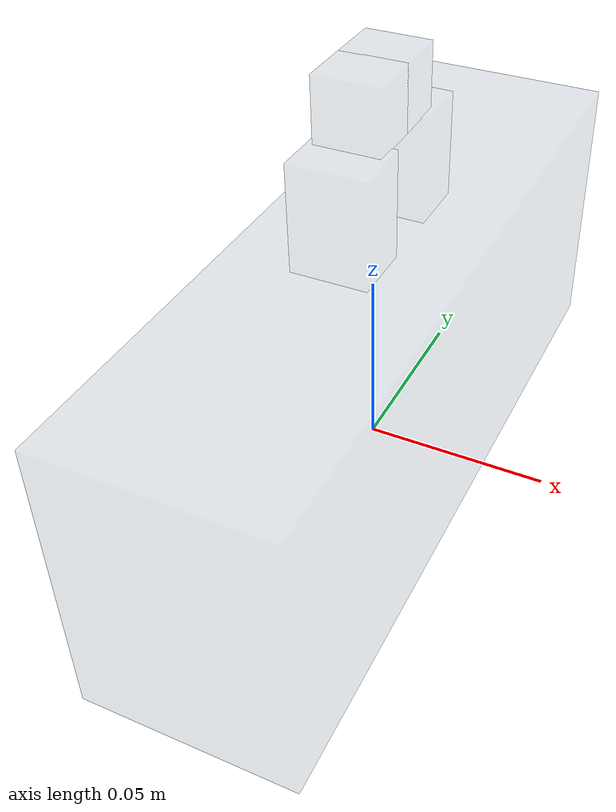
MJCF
<mujoco model="panda hand">
  <compiler angle="radian" meshdir="mjcf/franka_hand/meshes"/>

  <default>
    <default class="panda">
      <material specular="0.5" shininess="0.25"/>
      <joint armature="0.1" damping="1" axis="0 0 1" range="-2.8973 2.8973"/>
      <general dyntype="none" biastype="affine" ctrlrange="-2.8973 2.8973" forcerange="-87 87"/>
      <default class="finger">
        <joint axis="0 1 0" type="slide" range="0 0.04"/>
      </default>

      <default class="visual">
        <geom type="mesh" contype="0" conaffinity="0" group="2"/>
      </default>
      <default class="collision">
        <geom type="mesh" group="3"/>
        <default class="fingertip_pad_collision_1">
          <geom type="box" size="0.0085 0.004 0.0085" pos="0 0.0055 0.0445"/>
        </default>
        <default class="fingertip_pad_collision_2">
          <geom type="box" size="0.003 0.002 0.003" pos="0.0055 0.002 0.05"/>
        </default>
        <default class="fingertip_pad_collision_3">
          <geom type="box" size="0.003 0.002 0.003" pos="-0.0055 0.002 0.05"/>
        </default>
        <default class="fingertip_pad_collision_4">
          <geom type="box" size="0.003 0.002 0.0035" pos="0.0055 0.002 0.0395"/>
        </default>
        <default class="fingertip_pad_collision_5">
          <geom type="box" size="0.003 0.002 0.0035" pos="-0.0055 0.002 0.0395"/>
        </default>
      </default>
    </default>
  </default>

  <asset>
    <material class="panda" name="white" rgba="1 1 1 1"/>
    <material class="panda" name="off_white" rgba="0.901961 0.921569 0.929412 1"/>
    <material class="panda" name="black" rgba="0.25 0.25 0.25 1"/>

    <!-- Collision meshes -->
    <mesh name="hand_c" file="hand.stl"/>

    <!-- Visual meshes -->
    <mesh name="hand_0" file="hand_0.obj"/>
    <mesh name="hand_1" file="hand_1.obj"/>
    <mesh name="hand_2" file="hand_2.obj"/>
    <mesh name="hand_3" file="hand_3.obj"/>
    <mesh name="hand_4" file="hand_4.obj"/>
    <mesh name="finger_0" file="finger_0.obj"/>
    <mesh name="finger_1" file="finger_1.obj"/>
  </asset>

  <worldbody>
    <body name="hand" childclass="panda" quat="0 0 0 1">
      <inertial mass="0.73" pos="-0.01 0 0.03" diaginertia="0.001 0.0025 0.0017"/>
      <geom name="hand" size="0.02892 0.10084 0.04002" pos="0.0 0.0 0.02615" type="box" rgba="0.4 0.5 0.6 0.1" />
      <body name="left_finger" pos="0 0 0.0584">
        <inertial mass="0.015" pos="0 0 0" diaginertia="2.375e-6 2.375e-6 7.5e-7"/>
        <joint name="finger_joint1" class="finger" range="0 0.04" axis="0 1 0" type="slide"/>
        <geom name="left_finger_thumb_C" size="0.01006 0.00823 0.01477" pos="0.0 0.01664 0.02144" type="box" rgba="0.4 0.5 0.6 0.1" />
        <geom name="left_finger_tip_C" size="0.00856 0.00722 0.00859" pos="0.0 0.00706 0.04438" type="box" rgba="0.4 0.5 0.6 0.1" />
      </body>
      <body name="right_finger" pos="0 0 0.0584" quat="0 0 0 1">
        <inertial mass="0.015" pos="0 0 0" diaginertia="2.375e-6 2.375e-6 7.5e-7"/>
        <joint name="finger_joint2" class="finger" range="0 0.04" axis="0 1 0" type="slide"/>
        <geom name="right_finger_thumb_C" size="0.01006 0.00823 0.01477" pos="0.0 0.01664 0.02144" type="box" rgba="0.4 0.5 0.6 0.1" />
        <geom name="right_finger_tip_C" size="0.00856 0.00722 0.00859" pos="0.0 0.00706 0.04438" type="box" rgba="0.4 0.5 0.6 0.1" />
      </body>
    </body>
  </worldbody>

  <contact>
    <exclude body1="hand" body2="left_finger"/>
    <exclude body1="hand" body2="right_finger"/>
  </contact>

  <tendon>
    <fixed name="split">
      <joint joint="finger_joint1" coef="0.5"/>
      <joint joint="finger_joint2" coef="0.5"/>
    </fixed>
  </tendon>

  <equality>
    <joint joint1="finger_joint1" joint2="finger_joint2" solimp="0.95 0.99 0.001" solref="0.005 1"/>
  </equality>

  <actuator>
    <!-- Remap original ctrlrange (0, 0.04) to (0, 255): 0.04 * 100 / 255 = 0.01568627451 -->
    <general class="panda" name="actuator8" tendon="split" forcerange="-100 100" ctrlrange="0 255"
      gainprm="0.01568627451 0 0" biasprm="0 -100 -10"/>
  </actuator>
</mujoco>
